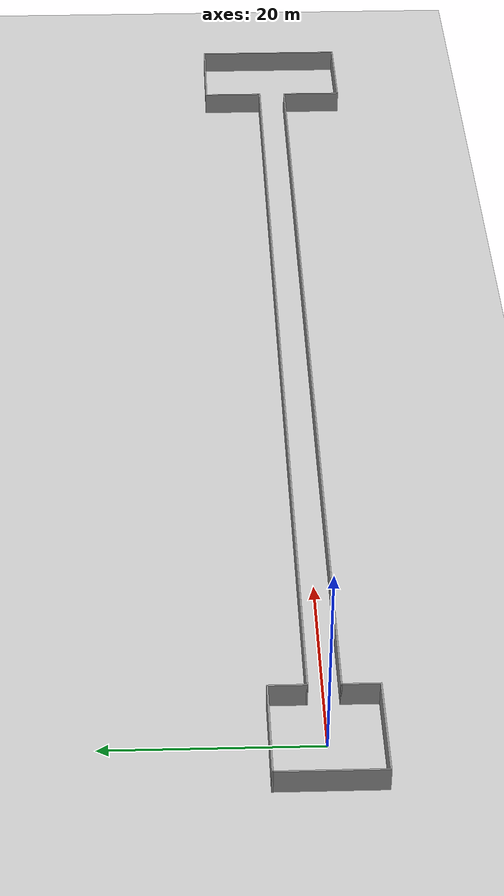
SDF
<sdf version="1.6">
 <world name="default">
  <light name="sun" type="directional">
   <pose>0 0 10 0 -0 0</pose>
   <diffuse>0.8 0.8 0.8 1</diffuse>
   <specular>0.2 0.2 0.2 1</specular>
   <attenuation>
    <range>1000</range>
    <constant>0.9</constant>
    <linear>0.01</linear>
    <quadratic>0.001</quadratic>
   </attenuation>
   <direction>-0.5 0.1 -0.9</direction>
  </light>
  <model name="ground_plane">
   <static>1</static>
   <link name="link">
    <collision name="collision">
     <geometry><plane><normal>0 0 1</normal><size>250 250</size></plane></geometry>
     <surface><friction><ode><mu>100</mu><mu2>50</mu2></ode></friction></surface>
    </collision>
    <visual name="visual">
     <cast_shadows>0</cast_shadows>
     <geometry><plane><normal>0 0 1</normal><size>100 100</size></plane></geometry>
     <material>
      <script><uri>file://media/materials/scripts/gazebo.material</uri><name>Gazebo/Grey</name></script>
     </material>
    </visual>
   </link>
  </model>
  <gravity>0 0 -9.8</gravity>
  <magnetic_field>6e-06 2.3e-05 -4.2e-05</magnetic_field>
  <atmosphere type="adiabatic"/>
  <physics name="default_physics" default="0" type="ode">
   <max_step_size>0.001</max_step_size>
   <real_time_factor>1</real_time_factor>
   <real_time_update_rate>1000</real_time_update_rate>
  </physics>
  <scene><ambient>0.4 0.4 0.4 1</ambient><background>0.7 0.7 0.7 1</background><shadows>1</shadows></scene>
  <spherical_coordinates>
   <surface_model>EARTH_WGS84</surface_model>
   <latitude_deg>0</latitude_deg>
   <longitude_deg>0</longitude_deg>
   <elevation>0</elevation>
   <heading_deg>0</heading_deg>
  </spherical_coordinates>
  <model name="DynCorridor">
   <pose>55 0 0 0 -0 0</pose>
   <link name="Wall_0">
    <collision name="Wall_0_Collision">
     <geometry><box><size>10.15 0.15 2.5</size></box></geometry>
     <pose>0 0 1.25 0 -0 0</pose>
    </collision>
    <visual name="Wall_0_Visual">
     <pose>0 0 1.25 0 -0 0</pose>
     <geometry><box><size>10.15 0.15 2.5</size></box></geometry>
     <material>
      <script><uri>file://media/materials/scripts/gazebo.material</uri><name>Gazebo/Grey</name></script>
      <ambient>1 1 1 1</ambient>
     </material>
     <meta><layer>0</layer></meta>
    </visual>
    <pose>-55 5 0 0 -0 0</pose>
   </link>
   <link name="Wall_1">
    <collision name="Wall_1_Collision">
     <geometry><box><size>3.65 0.15 2.5</size></box></geometry>
     <pose>0 0 1.25 0 -0 0</pose>
    </collision>
    <visual name="Wall_1_Visual">
     <pose>0 0 1.25 0 -0 0</pose>
     <geometry><box><size>3.65 0.15 2.5</size></box></geometry>
     <material>
      <script><uri>file://media/materials/scripts/gazebo.material</uri><name>Gazebo/Grey</name></script>
      <ambient>1 1 1 1</ambient>
     </material>
     <meta><layer>0</layer></meta>
    </visual>
    <pose>-50 3.25 0 0 0 -1.5708</pose>
   </link>
   <link name="Wall_11">
    <collision name="Wall_11_Collision">
     <geometry><box><size>0.15 0.15 2.5</size></box></geometry>
     <pose>0 0 1.25 0 -0 0</pose>
    </collision>
    <visual name="Wall_11_Visual">
     <pose>0 0 1.25 0 -0 0</pose>
     <geometry><box><size>0.15 0.15 2.5</size></box></geometry>
     <material>
      <script><uri>file://media/materials/scripts/gazebo.material</uri><name>Gazebo/Grey</name></script>
      <ambient>1 1 1 1</ambient>
     </material>
     <meta><layer>0</layer></meta>
    </visual>
    <pose>-50 -1.5 0 0 -0 0</pose>
   </link>
   <link name="Wall_13">
    <collision name="Wall_13_Collision">
     <geometry><box><size>100.15 0.15 2.5</size></box></geometry>
     <pose>0 0 1.25 0 -0 0</pose>
    </collision>
    <visual name="Wall_13_Visual">
     <pose>0 0 1.25 0 -0 0</pose>
     <geometry><box><size>100.15 0.15 2.5</size></box></geometry>
     <material>
      <script><uri>file://media/materials/scripts/gazebo.material</uri><name>Gazebo/Grey</name></script>
      <ambient>1 1 1 1</ambient>
     </material>
     <meta><layer>0</layer></meta>
    </visual>
    <pose>-2e-06 -1.5 0 0 -0 0</pose>
   </link>
   <link name="Wall_18">
    <collision name="Wall_18_Collision">
     <geometry><box><size>6.65 0.15 2.5</size></box></geometry>
     <pose>0 0 1.25 0 -0 0</pose>
    </collision>
    <visual name="Wall_18_Visual">
     <pose>0 0 1.25 0 -0 0</pose>
     <geometry><box><size>6.65 0.15 2.5</size></box></geometry>
     <material>
      <script><uri>file://media/materials/scripts/gazebo.material</uri><name>Gazebo/Grey</name></script>
      <ambient>1 1 1 1</ambient>
     </material>
     <meta><layer>0</layer></meta>
    </visual>
    <pose>50 4.75 0 0 -0 1.5708</pose>
   </link>
   <link name="Wall_20">
    <collision name="Wall_20_Collision">
     <geometry><box><size>6.65 0.15 2.5</size></box></geometry>
     <pose>0 0 1.25 0 -0 0</pose>
    </collision>
    <visual name="Wall_20_Visual">
     <pose>0 0 1.25 0 -0 0</pose>
     <geometry><box><size>6.65 0.15 2.5</size></box></geometry>
     <material>
      <script><uri>file://media/materials/scripts/gazebo.material</uri><name>Gazebo/Grey</name></script>
      <ambient>1 1 1 1</ambient>
     </material>
     <meta><layer>0</layer></meta>
    </visual>
    <pose>50 -4.75 0 0 0 -1.5708</pose>
   </link>
   <link name="Wall_22">
    <collision name="Wall_22_Collision">
     <geometry><box><size>10.15 0.15 2.5</size></box></geometry>
     <pose>0 0 1.25 0 -0 0</pose>
    </collision>
    <visual name="Wall_22_Visual">
     <pose>0 0 1.25 0 -0 0</pose>
     <geometry><box><size>10.15 0.15 2.5</size></box></geometry>
     <material>
      <script><uri>file://media/materials/scripts/gazebo.material</uri><name>Gazebo/Grey</name></script>
      <ambient>1 1 1 1</ambient>
     </material>
     <meta><layer>0</layer></meta>
    </visual>
    <pose>55 8 0 0 -0 0</pose>
   </link>
   <link name="Wall_24">
    <collision name="Wall_24_Collision">
     <geometry><box><size>10.15 0.15 2.5</size></box></geometry>
     <pose>0 0 1.25 0 -0 0</pose>
    </collision>
    <visual name="Wall_24_Visual">
     <pose>0 0 1.25 0 -0 0</pose>
     <geometry><box><size>10.15 0.15 2.5</size></box></geometry>
     <material>
      <script><uri>file://media/materials/scripts/gazebo.material</uri><name>Gazebo/Grey</name></script>
      <ambient>1 1 1 1</ambient>
     </material>
     <meta><layer>0</layer></meta>
    </visual>
    <pose>55 -8 0 0 -0 0</pose>
   </link>
   <link name="Wall_26">
    <collision name="Wall_26_Collision">
     <geometry><box><size>16.15 0.15 2.5</size></box></geometry>
     <pose>0 0 1.25 0 -0 0</pose>
    </collision>
    <visual name="Wall_26_Visual">
     <pose>0 0 1.25 0 -0 0</pose>
     <geometry><box><size>16.15 0.15 2.5</size></box></geometry>
     <material>
      <script><uri>file://media/materials/scripts/gazebo.material</uri><name>Gazebo/Grey</name></script>
      <ambient>1 1 1 1</ambient>
     </material>
     <meta><layer>0</layer></meta>
    </visual>
    <pose>60 0 0 0 -0 1.5708</pose>
   </link>
   <link name="Wall_3">
    <collision name="Wall_3_Collision">
     <geometry><box><size>10.15 0.15 2.5</size></box></geometry>
     <pose>0 0 1.25 0 -0 0</pose>
    </collision>
    <visual name="Wall_3_Visual">
     <pose>0 0 1.25 0 -0 0</pose>
     <geometry><box><size>10.15 0.15 2.5</size></box></geometry>
     <material>
      <script><uri>file://media/materials/scripts/gazebo.material</uri><name>Gazebo/Grey</name></script>
      <ambient>1 1 1 1</ambient>
     </material>
     <meta><layer>0</layer></meta>
    </visual>
    <pose>-60 0 0 0 0 -1.5708</pose>
   </link>
   <link name="Wall_4">
    <collision name="Wall_4_Collision">
     <geometry><box><size>10.15 0.15 2.5</size></box></geometry>
     <pose>0 0 1.25 0 -0 0</pose>
    </collision>
    <visual name="Wall_4_Visual">
     <pose>0 0 1.25 0 -0 0</pose>
     <geometry><box><size>10.15 0.15 2.5</size></box></geometry>
     <material>
      <script><uri>file://media/materials/scripts/gazebo.material</uri><name>Gazebo/Grey</name></script>
      <ambient>1 1 1 1</ambient>
     </material>
     <meta><layer>0</layer></meta>
    </visual>
    <pose>-55 -5 0 0 -0 0</pose>
   </link>
   <link name="Wall_7">
    <collision name="Wall_7_Collision">
     <geometry><box><size>3.65 0.15 2.5</size></box></geometry>
     <pose>0 0 1.25 0 -0 0</pose>
    </collision>
    <visual name="Wall_7_Visual">
     <pose>0 0 1.25 0 -0 0</pose>
     <geometry><box><size>3.65 0.15 2.5</size></box></geometry>
     <material>
      <script><uri>file://media/materials/scripts/gazebo.material</uri><name>Gazebo/Grey</name></script>
      <ambient>1 1 1 1</ambient>
     </material>
     <meta><layer>0</layer></meta>
    </visual>
    <pose>-50 -3.25 0 0 -0 1.5708</pose>
   </link>
   <link name="Wall_9">
    <collision name="Wall_9_Collision">
     <geometry><box><size>100.15 0.15 2.5</size></box></geometry>
     <pose>0 0 1.25 0 -0 0</pose>
    </collision>
    <visual name="Wall_9_Visual">
     <pose>0 0 1.25 0 -0 0</pose>
     <geometry><box><size>100.15 0.15 2.5</size></box></geometry>
     <material>
      <script><uri>file://media/materials/scripts/gazebo.material</uri><name>Gazebo/Grey</name></script>
      <ambient>1 1 1 1</ambient>
     </material>
     <meta><layer>0</layer></meta>
    </visual>
    <pose>-2e-06 1.5 0 0 -0 0</pose>
   </link>
   <static>1</static>
  </model>
 </world>
</sdf>
